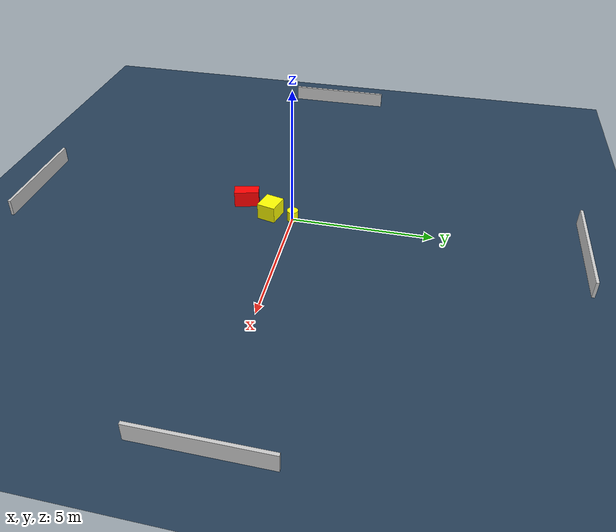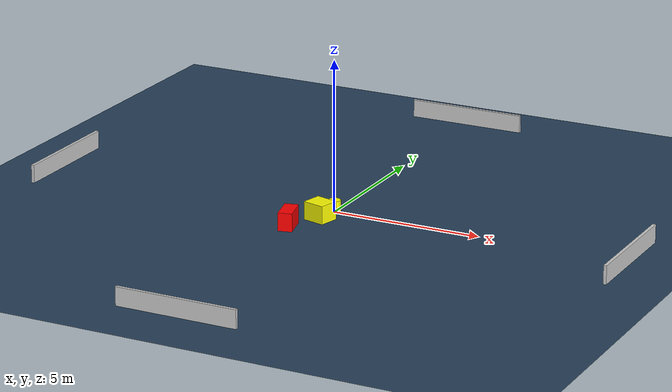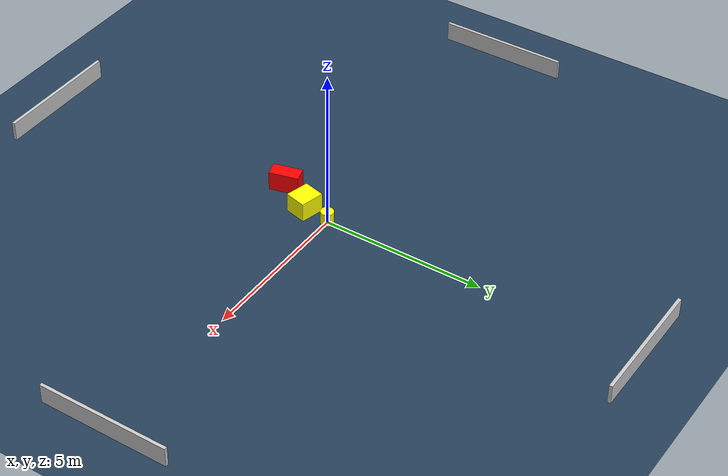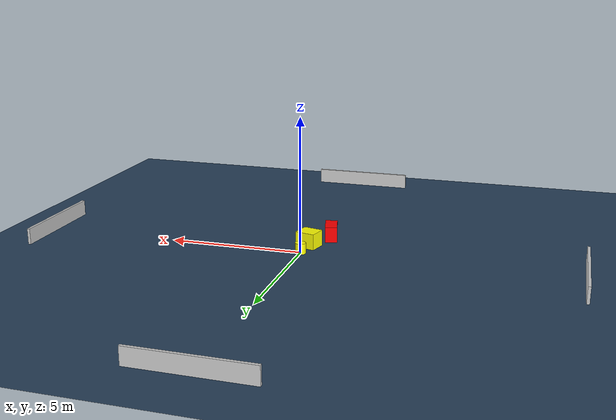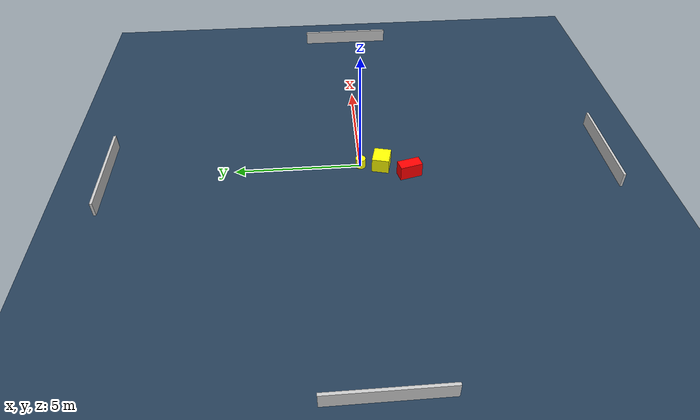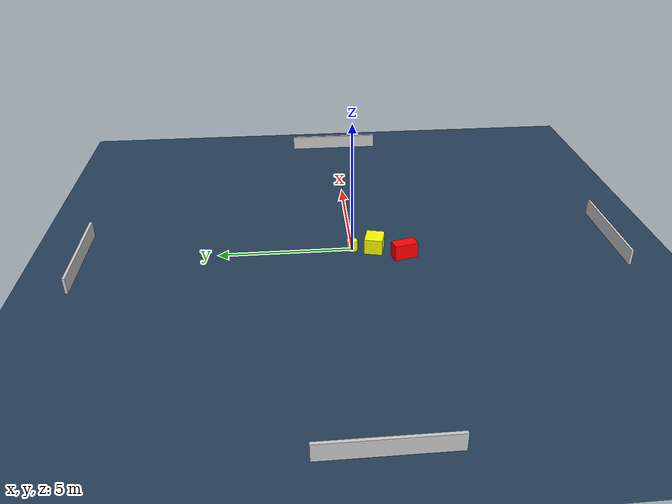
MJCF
<?xml version="1.0" ?>
<mujoco model="generated_environment">
  <option timestep="0.01" integrator="RK4" cone="elliptic"/>
  <default>
    <geom density="1"/>
  </default>
  <asset>
    <texture builtin="gradient" height="3072" name="skybox" rgb1="0.3 0.5 0.7" rgb2="0 0 0" type="skybox" width="512"/>
    <texture builtin="checker" height="300" name="groundplane" rgb1="0.2 0.3 0.4" rgb2="0.1 0.2 0.3" type="2d" width="300"/>
    <material name="groundplane" reflectance="0.2" texrepeat="5 5" texture="groundplane"/>
  </asset>
  <worldbody>
    <light dir="0 0 -1" directional="true" pos="0 0 1.5"/>
    <geom condim="3" friction="0.5 0.005 0.001" material="groundplane" name="floor" pos="0 0 0" size="0 0 0.05" type="plane"/>
    <body name="walls">
      <geom name="wall_1" condim="4" pos="-10.0 0.0 0.3" rgba="0.800000011920929 0.800000011920929 0.800000011920929 1.0" size="0.05 2.0 0.3" type="box"/>
      <geom name="wall_2" condim="4" pos="10.0 0.0 0.3" rgba="0.800000011920929 0.800000011920929 0.800000011920929 1.0" size="0.05 2.0 0.3" type="box"/>
      <geom name="wall_3" condim="4" pos="0.0 -10.0 0.3" rgba="0.800000011920929 0.800000011920929 0.800000011920929 1.0" size="2.0 0.05 0.3" type="box"/>
      <geom name="wall_4" condim="4" pos="0.0 10.0 0.3" rgba="0.800000011920929 0.800000011920929 0.800000011920929 1.0" size="2.0 0.05 0.3" type="box"/>
    </body>
    <body name="robot">
      <joint name="joint_x" type="slide" pos="0 0 0" axis="1 0 0"/>
      <joint name="joint_y" type="slide" pos="0 0 0" axis="0 1 0"/>
      <geom name="robot" type="cylinder" pos="0.0 0.0 0.2" size="0.2 0.2 0.0" mass="5.0" friction="1.0 0.005 0.0001" condim="4" rgba="1.0 1.0 0.0 1.0"/>
    </body>
    <body name="obstacle_1_movable">
      <geom name="obstacle_1_movable" condim="4" pos="-0.08327781002670162 -0.833551484701285 0.3" euler="0 0 345.9744866924759" friction="0.0 0.005 0.001" rgba="1.0 1.0 0.0 1.0" size="0.37379169736831364 0.3352382721689099 0.3" type="box" mass="0.1"/>
      <joint type="free"/>
    </body>
    <body name="obstacle_2_static">
      <geom name="obstacle_2_static" condim="4" pos="-0.6526963355087161 -1.8861141316916166 0.3" euler="0 0 13.966470650955376" friction="0.0 0.005 0.001" rgba="1.0 0.0 0.0 1.0" size="0.22626474645270292 0.44860597101354 0.3" type="box"/>
    </body>
  </worldbody>
  <actuator>
    <motor name="actuator_x" joint="joint_x" gear="1" ctrlrange="-1 1"/>
    <motor name="actuator_y" joint="joint_y" gear="1" ctrlrange="-1 1"/>
  </actuator>
</mujoco>
